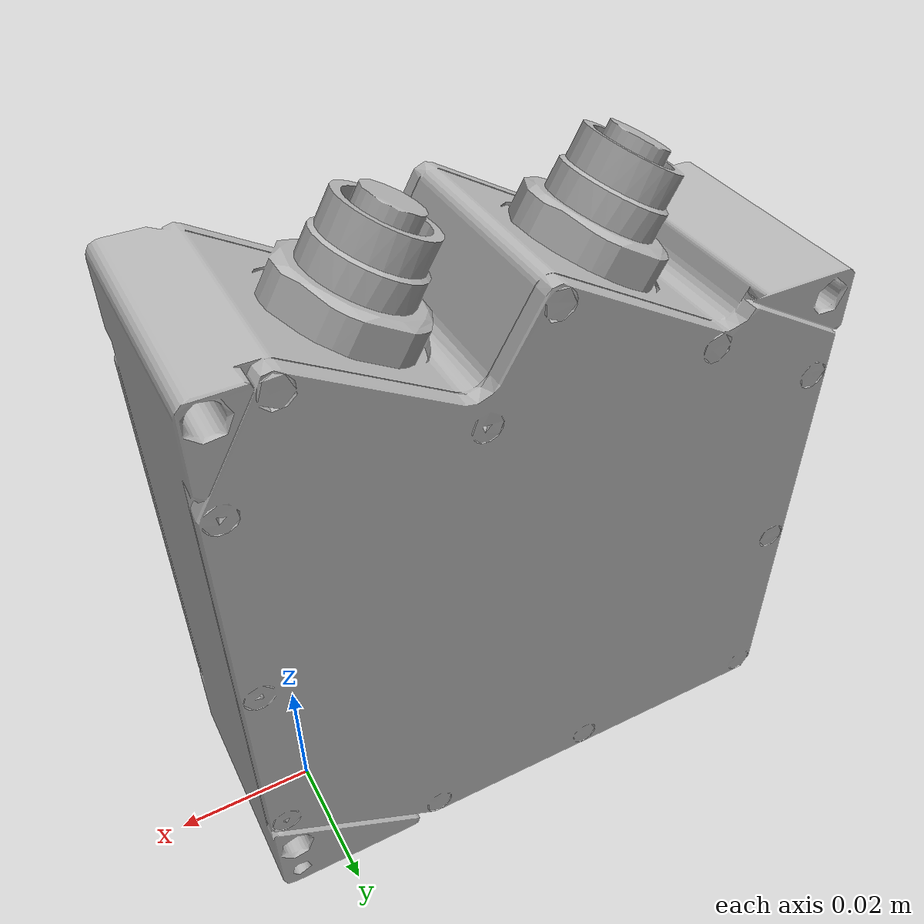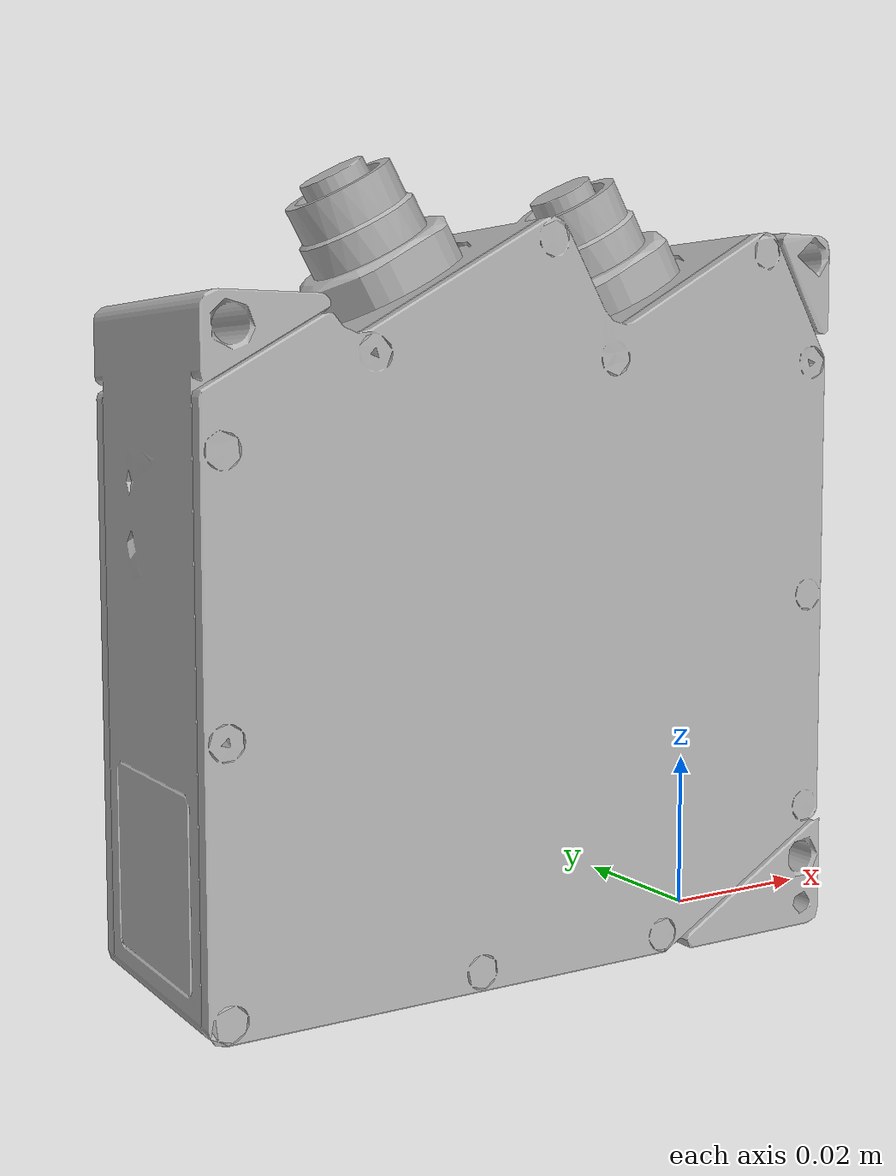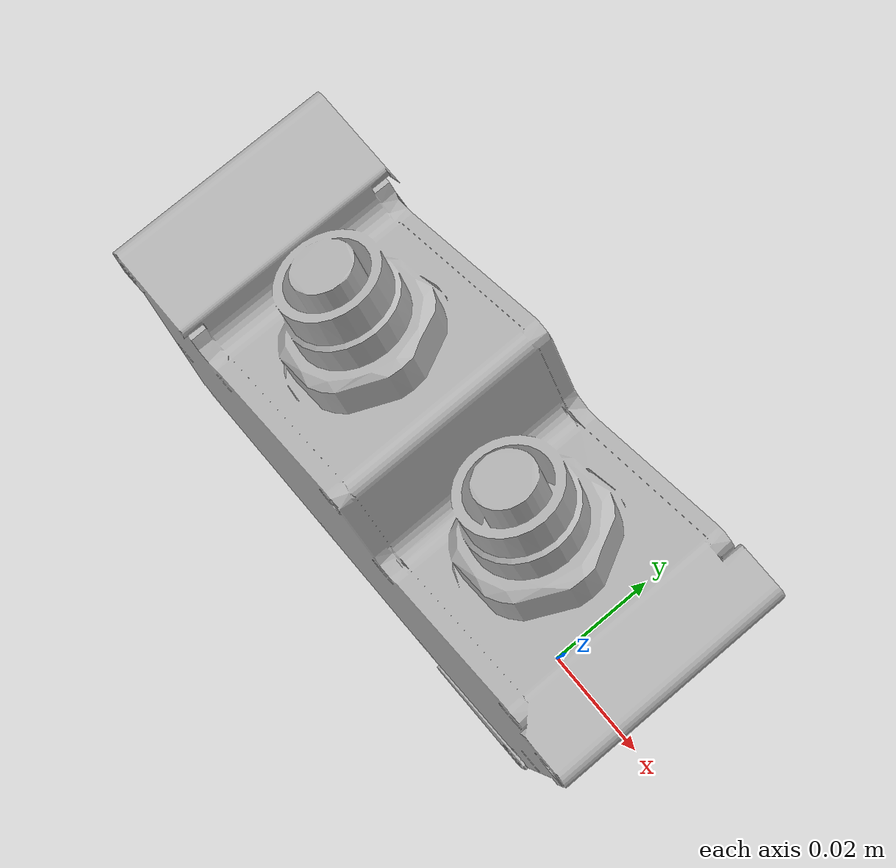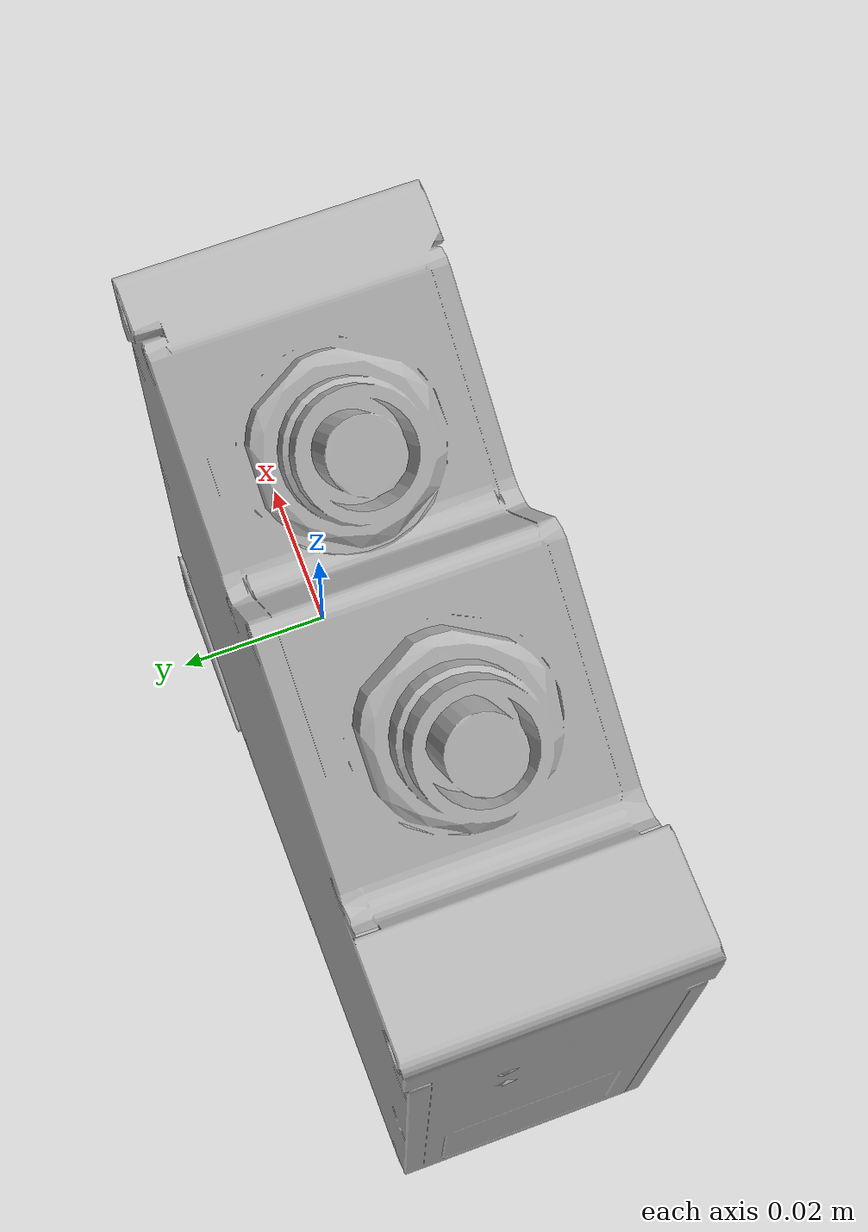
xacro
<?xml version="1.0" ?>
<robot name="microepsilon_scancontrol_26x0_29x0_25" xmlns:xacro="http://wiki.ros.org/xacro">
  <xacro:include filename="$(find micro_epsilon_scancontrol_description)/urdf/scancontrol_26x0_29x0_25_macro.xacro"/>
  <xacro:microepsilon_scancontrol_26x0_29x0_25 prefix=""/>
</robot>

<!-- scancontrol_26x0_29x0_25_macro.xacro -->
<robot xmlns:xacro="http://wiki.ros.org/xacro">

  <!-- Macro for both 26x0 and 29x0 - 25 scan control sensor productlines -->
  <xacro:macro name="microepsilon_scancontrol_26x0_29x0_25" params="prefix">
    <link name="${prefix}base_link">
      <visual>
        <origin xyz="0 0 0" rpy="${pi/2} 0 ${pi/2}"/>
        <geometry>
          <mesh filename="package://micro_epsilon_scancontrol_description/meshes/visual/visual.dae"/>
       </geometry>
       <material name="microepsilon_silver">
         <color rgba="0.7 0.7 0.7 1.0"/>
       </material>
      </visual>
      <collision>
        <origin xyz="0 0 0" rpy="${pi/2} 0 ${pi/2}"/>
        <geometry>
          <mesh filename="package://micro_epsilon_scancontrol_description/meshes/collision/collision.stl"/>
        </geometry>
      </collision>
    </link>

    <link name="${prefix}aperture_frame" />

    <joint name="${prefix}base_link-${prefix}aperture_frame" type="fixed">
      <origin xyz="0 0 0" rpy="${pi} 0 ${pi/2}" />
      <parent link="${prefix}base_link" />
      <child link="${prefix}aperture_frame" />
    </joint>
  </xacro:macro>
</robot>
